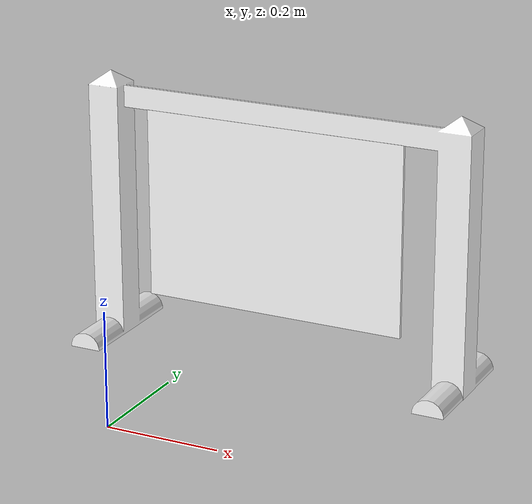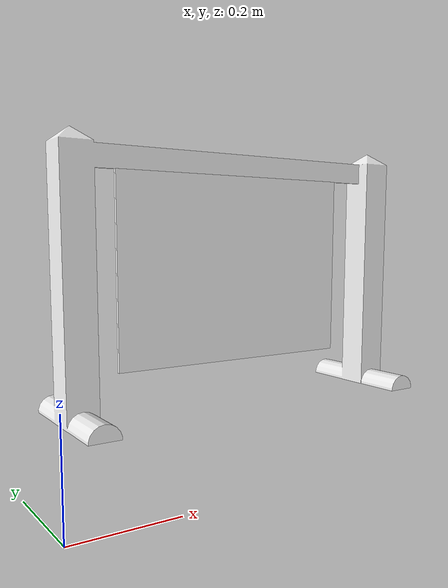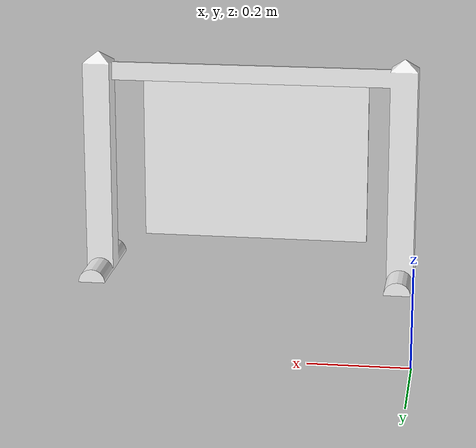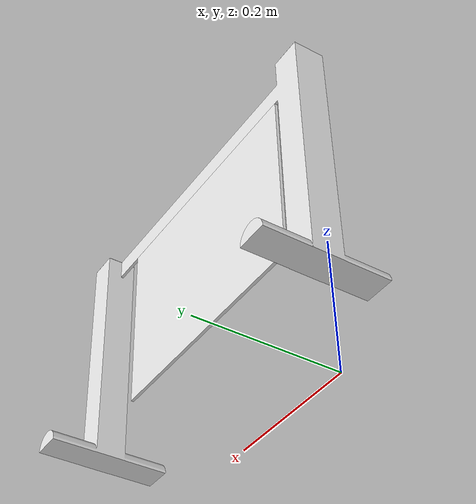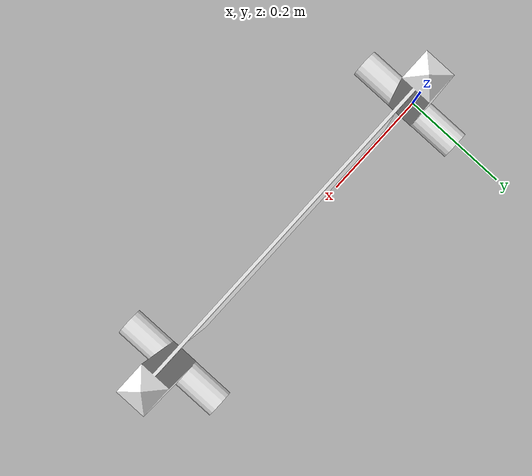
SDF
<?xml version="1.0" ?>
<sdf version="1.5">
  <model name="Marker">
    <pose>0 0 0.180 0 0 0</pose>
    <static>false</static>
    <link name="marker_holder">
      <collision name="collision">
        <geometry>
          <mesh>
            <uri>model://marker/meshes/marker_stand.dae</uri>
          </mesh>
        </geometry>
      </collision>
      <visual name="visual">
        <geometry>
          <mesh>
            <uri>model://marker/meshes/marker_stand.dae</uri>
          </mesh>
        </geometry>
        <material>
          <script>
            <uri>file://marker/materials/scripts</uri>
            <uri>file://marker/materials/textures</uri>
            <name>MarkerHolder/Image</name>
          </script>
            <ambient>0.95 0.95 0.95 1</ambient>
        </material>
      </visual>
    </link>
    <link name="marker">
      <pose>0.0 0.0 0.0 0 0 0</pose>
      <collision name="collision">
        <geometry>
          <mesh>
            <uri>model://marker/meshes/marker_stand.dae</uri>
          </mesh>
        </geometry>
        <surface>
          <friction>
            <ode>
              <mu>1</mu>
              <mu2>1</mu2>
              <slip1>0.5</slip1>
              <slip2>0</slip2>
            </ode>
          </friction>
        </surface>
      </collision>
      <visual name="visual">
        <geometry>
          <mesh>
            <uri>model://marker/meshes/marker.dae</uri>
          </mesh>
        </geometry>
        <material>
          <script>
            <uri>file://marker/materials/scripts</uri>
            <uri>file://marker/materials/textures</uri>
            <name>Marker1/Image</name>
          </script>
            <ambient>0.95 0.95 0.95 1</ambient>
        </material>
      </visual>
    </link>
    <joint type="fixed" name="holding">
      <pose>0 0 0 0 0 0</pose>
      <child>marker</child>
      <parent>marker_stand</parent>
      <axis>
        <xyz>0 1 0</xyz>
        <use_parent_model_frame>true</use_parent_model_frame>
      </axis>
    </joint>
  </model>
</sdf>
